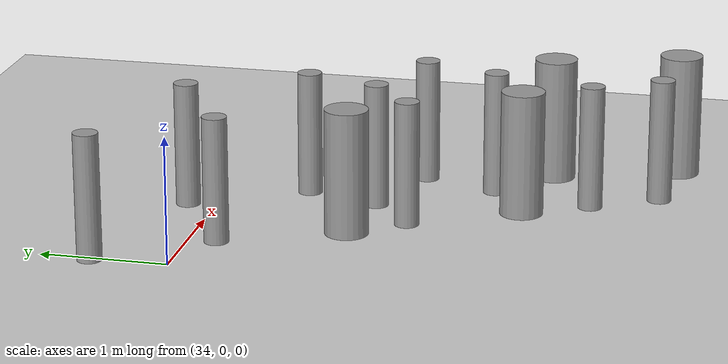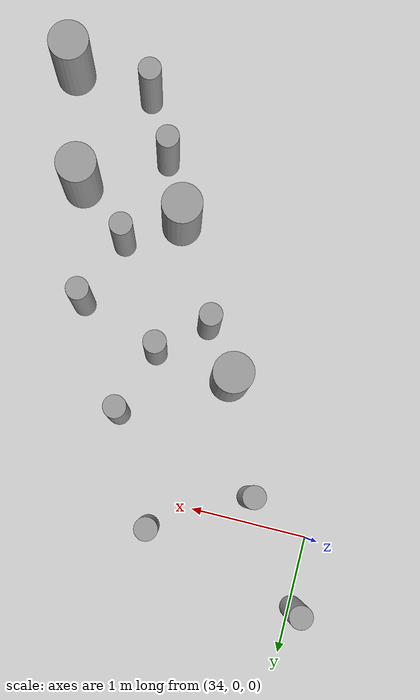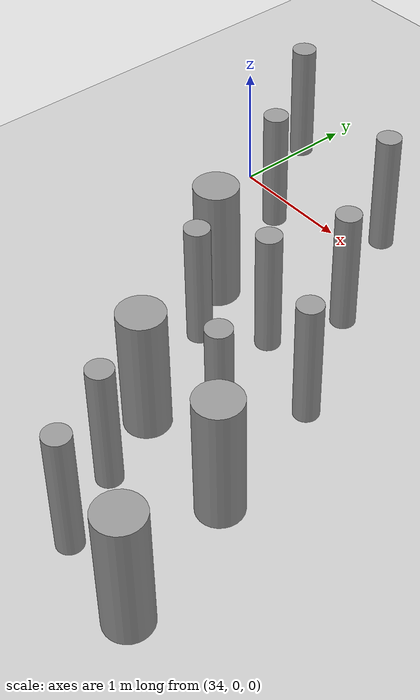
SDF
<sdf version="1.6">
 <world name="default">
  <model name="ground_plane">
   <static>1</static>
   <link name="link">
    <collision name="collision">
     <geometry><plane><normal>0 0 1</normal><size>100 100</size></plane></geometry>
     <surface><friction><ode><mu>100</mu><mu2>50</mu2></ode></friction></surface>
    </collision>
    <visual name="visual">
     <cast_shadows>0</cast_shadows>
     <geometry><plane><normal>0 0 1</normal><size>100 100</size></plane></geometry>
     <material>
      <script><uri>file://media/materials/scripts/gazebo.material</uri><name>Gazebo/Grey</name></script>
     </material>
    </visual>
   </link>
  </model>
  <model name="cyl_wall_clone_clone_1_clone_1_clone_clone_1">
   <link name="link_0">
    <pose>-2.73893 -0.366465 0 0 -0 0</pose>
    <inertial>
     <mass>0.0374993</mass>
     <inertia>
      <ixx>0.00321281</ixx>
      <ixy>0</ixy>
      <ixz>0</ixz>
      <iyy>0.00321281</iyy>
      <iyz>0</iyz>
      <izz>0.000175774</izz>
     </inertia>
    </inertial>
    <visual name="visual">
     <geometry><cylinder><radius>0.0968661</radius><length>1</length></cylinder></geometry>
     <material>
      <lighting>1</lighting>
      <script><uri>file://media/materials/scripts/gazebo.material</uri><name>Gazebo/Grey</name></script>
      <ambient>0.3 0.3 0.3 1</ambient>
      <diffuse>0.7 0.7 0.7 1</diffuse>
      <specular>0.01 0.01 0.01 1</specular>
      <emissive>0 0 0 1</emissive>
     </material>
    </visual>
    <collision name="collision">
     <geometry><cylinder><radius>0.096866</radius><length>1</length></cylinder></geometry>
     <surface>
      <friction>
       <ode><mu>1</mu><mu2>1</mu2><fdir1>0 0 0</fdir1><slip1>0</slip1><slip2>0</slip2></ode>
       <torsional>
        <coefficient>1</coefficient>
        <patch_radius>0</patch_radius>
        <surface_radius>0</surface_radius>
        <use_patch_radius>1</use_patch_radius>
        <ode><slip>0</slip></ode>
       </torsional>
      </friction>
      <bounce><restitution_coefficient>0</restitution_coefficient><threshold>1e+06</threshold></bounce>
      <contact>
       <collide_without_contact>0</collide_without_contact>
       <collide_without_contact_bitmask>1</collide_without_contact_bitmask>
       <collide_bitmask>1</collide_bitmask>
       <ode>
        <soft_cfm>0</soft_cfm>
        <soft_erp>0.2</soft_erp>
        <kp>1e+13</kp>
        <kd>1</kd>
        <max_vel>0.01</max_vel>
        <min_depth>0</min_depth>
       </ode>
       <bullet>
        <split_impulse>1</split_impulse>
        <split_impulse_penetration_threshold>-0.01</split_impulse_penetration_threshold>
        <soft_cfm>0</soft_cfm>
        <soft_erp>0.2</soft_erp>
        <kp>1e+13</kp>
        <kd>1</kd>
       </bullet>
      </contact>
     </surface>
    </collision>
   </link>
   <link name="link_0_clone">
    <pose>-1.73893 0.61877 0 0 -0 0</pose>
    <inertial>
     <mass>0.0374993</mass>
     <inertia>
      <ixx>0.00321281</ixx>
      <ixy>0</ixy>
      <ixz>0</ixz>
      <iyy>0.00321281</iyy>
      <iyz>0</iyz>
      <izz>0.000175774</izz>
     </inertia>
    </inertial>
    <visual name="visual">
     <geometry><cylinder><radius>0.0968661</radius><length>1</length></cylinder></geometry>
     <material>
      <lighting>1</lighting>
      <script><uri>file://media/materials/scripts/gazebo.material</uri><name>Gazebo/Grey</name></script>
      <ambient>0.3 0.3 0.3 1</ambient>
      <diffuse>0.7 0.7 0.7 1</diffuse>
      <specular>0.01 0.01 0.01 1</specular>
      <emissive>0 0 0 1</emissive>
      <shader type="pixel"/>
     </material>
    </visual>
    <collision name="collision">
     <geometry><cylinder><radius>0.096866</radius><length>1</length></cylinder></geometry>
     <surface>
      <friction>
       <ode><mu>1</mu><mu2>1</mu2><fdir1>0 0 0</fdir1><slip1>0</slip1><slip2>0</slip2></ode>
       <torsional>
        <coefficient>1</coefficient>
        <patch_radius>0</patch_radius>
        <surface_radius>0</surface_radius>
        <use_patch_radius>1</use_patch_radius>
        <ode><slip>0</slip></ode>
       </torsional>
      </friction>
      <bounce><restitution_coefficient>0</restitution_coefficient><threshold>1e+06</threshold></bounce>
      <contact>
       <collide_without_contact>0</collide_without_contact>
       <collide_without_contact_bitmask>1</collide_without_contact_bitmask>
       <collide_bitmask>1</collide_bitmask>
       <ode>
        <soft_cfm>0</soft_cfm>
        <soft_erp>0.2</soft_erp>
        <kp>1e+13</kp>
        <kd>1</kd>
        <max_vel>0.01</max_vel>
        <min_depth>0</min_depth>
       </ode>
       <bullet>
        <split_impulse>1</split_impulse>
        <split_impulse_penetration_threshold>-0.01</split_impulse_penetration_threshold>
        <soft_cfm>0</soft_cfm>
        <soft_erp>0.2</soft_erp>
        <kp>1e+13</kp>
        <kd>1</kd>
       </bullet>
      </contact>
     </surface>
    </collision>
   </link>
   <link name="link_0_clone_clone">
    <pose>-0.327073 0.143919 0 0 -0 0</pose>
    <inertial>
     <mass>0.0374993</mass>
     <inertia>
      <ixx>0.00321281</ixx>
      <ixy>0</ixy>
      <ixz>0</ixz>
      <iyy>0.00321281</iyy>
      <iyz>0</iyz>
      <izz>0.000175774</izz>
     </inertia>
    </inertial>
    <visual name="visual">
     <geometry><cylinder><radius>0.0968661</radius><length>1</length></cylinder></geometry>
     <material>
      <lighting>1</lighting>
      <script><uri>file://media/materials/scripts/gazebo.material</uri><name>Gazebo/Grey</name></script>
      <ambient>0.3 0.3 0.3 1</ambient>
      <diffuse>0.7 0.7 0.7 1</diffuse>
      <specular>0.01 0.01 0.01 1</specular>
      <emissive>0 0 0 1</emissive>
      <shader type="pixel"/>
     </material>
    </visual>
    <collision name="collision">
     <geometry><cylinder><radius>0.096866</radius><length>1</length></cylinder></geometry>
     <surface>
      <friction>
       <ode><mu>1</mu><mu2>1</mu2><fdir1>0 0 0</fdir1><slip1>0</slip1><slip2>0</slip2></ode>
       <torsional>
        <coefficient>1</coefficient>
        <patch_radius>0</patch_radius>
        <surface_radius>0</surface_radius>
        <use_patch_radius>1</use_patch_radius>
        <ode><slip>0</slip></ode>
       </torsional>
      </friction>
      <bounce><restitution_coefficient>0</restitution_coefficient><threshold>1e+06</threshold></bounce>
      <contact>
       <collide_without_contact>0</collide_without_contact>
       <collide_without_contact_bitmask>1</collide_without_contact_bitmask>
       <collide_bitmask>1</collide_bitmask>
       <ode>
        <soft_cfm>0</soft_cfm>
        <soft_erp>0.2</soft_erp>
        <kp>1e+13</kp>
        <kd>1</kd>
        <max_vel>0.01</max_vel>
        <min_depth>0</min_depth>
       </ode>
       <bullet>
        <split_impulse>1</split_impulse>
        <split_impulse_penetration_threshold>-0.01</split_impulse_penetration_threshold>
        <soft_cfm>0</soft_cfm>
        <soft_erp>0.2</soft_erp>
        <kp>1e+13</kp>
        <kd>1</kd>
       </bullet>
      </contact>
     </surface>
    </collision>
   </link>
   <link name="link_0_clone_clone_0">
    <pose>1.26107 -0.419359 0 0 -0 0</pose>
    <inertial>
     <mass>0.0374993</mass>
     <inertia>
      <ixx>0.00321281</ixx>
      <ixy>0</ixy>
      <ixz>0</ixz>
      <iyy>0.00321281</iyy>
      <iyz>0</iyz>
      <izz>0.000175774</izz>
     </inertia>
    </inertial>
    <visual name="visual">
     <geometry><cylinder><radius>0.0968661</radius><length>1</length></cylinder></geometry>
     <material>
      <lighting>1</lighting>
      <script><uri>file://media/materials/scripts/gazebo.material</uri><name>Gazebo/Grey</name></script>
      <ambient>0.3 0.3 0.3 1</ambient>
      <diffuse>0.7 0.7 0.7 1</diffuse>
      <specular>0.01 0.01 0.01 1</specular>
      <emissive>0 0 0 1</emissive>
      <shader type="pixel"/>
     </material>
    </visual>
    <collision name="collision">
     <geometry><cylinder><radius>0.096866</radius><length>1</length></cylinder></geometry>
     <surface>
      <friction>
       <ode><mu>1</mu><mu2>1</mu2><fdir1>0 0 0</fdir1><slip1>0</slip1><slip2>0</slip2></ode>
       <torsional>
        <coefficient>1</coefficient>
        <patch_radius>0</patch_radius>
        <surface_radius>0</surface_radius>
        <use_patch_radius>1</use_patch_radius>
        <ode><slip>0</slip></ode>
       </torsional>
      </friction>
      <bounce><restitution_coefficient>0</restitution_coefficient><threshold>1e+06</threshold></bounce>
      <contact>
       <collide_without_contact>0</collide_without_contact>
       <collide_without_contact_bitmask>1</collide_without_contact_bitmask>
       <collide_bitmask>1</collide_bitmask>
       <ode>
        <soft_cfm>0</soft_cfm>
        <soft_erp>0.2</soft_erp>
        <kp>1e+13</kp>
        <kd>1</kd>
        <max_vel>0.01</max_vel>
        <min_depth>0</min_depth>
       </ode>
       <bullet>
        <split_impulse>1</split_impulse>
        <split_impulse_penetration_threshold>-0.01</split_impulse_penetration_threshold>
        <soft_cfm>0</soft_cfm>
        <soft_erp>0.2</soft_erp>
        <kp>1e+13</kp>
        <kd>1</kd>
       </bullet>
      </contact>
     </surface>
    </collision>
   </link>
   <link name="link_0_clone_clone_1">
    <pose>-1.73893 -0.277168 0 0 -0 0</pose>
    <inertial>
     <mass>0.0374993</mass>
     <inertia>
      <ixx>0.00321281</ixx>
      <ixy>0</ixy>
      <ixz>0</ixz>
      <iyy>0.00321281</iyy>
      <iyz>0</iyz>
      <izz>0.000175774</izz>
     </inertia>
    </inertial>
    <visual name="visual">
     <geometry><cylinder><radius>0.0968661</radius><length>1</length></cylinder></geometry>
     <material>
      <lighting>1</lighting>
      <script><uri>file://media/materials/scripts/gazebo.material</uri><name>Gazebo/Grey</name></script>
      <ambient>0.3 0.3 0.3 1</ambient>
      <diffuse>0.7 0.7 0.7 1</diffuse>
      <specular>0.01 0.01 0.01 1</specular>
      <emissive>0 0 0 1</emissive>
      <shader type="pixel"/>
     </material>
    </visual>
    <collision name="collision">
     <geometry><cylinder><radius>0.096866</radius><length>1</length></cylinder></geometry>
     <surface>
      <friction>
       <ode><mu>1</mu><mu2>1</mu2><fdir1>0 0 0</fdir1><slip1>0</slip1><slip2>0</slip2></ode>
       <torsional>
        <coefficient>1</coefficient>
        <patch_radius>0</patch_radius>
        <surface_radius>0</surface_radius>
        <use_patch_radius>1</use_patch_radius>
        <ode><slip>0</slip></ode>
       </torsional>
      </friction>
      <bounce><restitution_coefficient>0</restitution_coefficient><threshold>1e+06</threshold></bounce>
      <contact>
       <collide_without_contact>0</collide_without_contact>
       <collide_without_contact_bitmask>1</collide_without_contact_bitmask>
       <collide_bitmask>1</collide_bitmask>
       <ode>
        <soft_cfm>0</soft_cfm>
        <soft_erp>0.2</soft_erp>
        <kp>1e+13</kp>
        <kd>1</kd>
        <max_vel>0.01</max_vel>
        <min_depth>0</min_depth>
       </ode>
       <bullet>
        <split_impulse>1</split_impulse>
        <split_impulse_penetration_threshold>-0.01</split_impulse_penetration_threshold>
        <soft_cfm>0</soft_cfm>
        <soft_erp>0.2</soft_erp>
        <kp>1e+13</kp>
        <kd>1</kd>
       </bullet>
      </contact>
     </surface>
    </collision>
   </link>
   <link name="link_0_clone_clone_2">
    <pose>-0.738934 0.593961 0 0 -0 0</pose>
    <inertial>
     <mass>0.0374993</mass>
     <inertia>
      <ixx>0.00321281</ixx>
      <ixy>0</ixy>
      <ixz>0</ixz>
      <iyy>0.00321281</iyy>
      <iyz>0</iyz>
      <izz>0.000175774</izz>
     </inertia>
    </inertial>
    <visual name="visual">
     <geometry><cylinder><radius>0.0968661</radius><length>1</length></cylinder></geometry>
     <material>
      <lighting>1</lighting>
      <script><uri>file://media/materials/scripts/gazebo.material</uri><name>Gazebo/Grey</name></script>
      <ambient>0.3 0.3 0.3 1</ambient>
      <diffuse>0.7 0.7 0.7 1</diffuse>
      <specular>0.01 0.01 0.01 1</specular>
      <emissive>0 0 0 1</emissive>
      <shader type="pixel"/>
     </material>
    </visual>
    <collision name="collision">
     <geometry><cylinder><radius>0.096866</radius><length>1</length></cylinder></geometry>
     <surface>
      <friction>
       <ode><mu>1</mu><mu2>1</mu2><fdir1>0 0 0</fdir1><slip1>0</slip1><slip2>0</slip2></ode>
       <torsional>
        <coefficient>1</coefficient>
        <patch_radius>0</patch_radius>
        <surface_radius>0</surface_radius>
        <use_patch_radius>1</use_patch_radius>
        <ode><slip>0</slip></ode>
       </torsional>
      </friction>
      <bounce><restitution_coefficient>0</restitution_coefficient><threshold>1e+06</threshold></bounce>
      <contact>
       <collide_without_contact>0</collide_without_contact>
       <collide_without_contact_bitmask>1</collide_without_contact_bitmask>
       <collide_bitmask>1</collide_bitmask>
       <ode>
        <soft_cfm>0</soft_cfm>
        <soft_erp>0.2</soft_erp>
        <kp>1e+13</kp>
        <kd>1</kd>
        <max_vel>0.01</max_vel>
        <min_depth>0</min_depth>
       </ode>
       <bullet>
        <split_impulse>1</split_impulse>
        <split_impulse_penetration_threshold>-0.01</split_impulse_penetration_threshold>
        <soft_cfm>0</soft_cfm>
        <soft_erp>0.2</soft_erp>
        <kp>1e+13</kp>
        <kd>1</kd>
       </bullet>
      </contact>
     </surface>
    </collision>
   </link>
   <link name="link_0_clone_clone_3">
    <pose>0.261066 0.624849 0 0 -0 0</pose>
    <inertial>
     <mass>0.0374993</mass>
     <inertia>
      <ixx>0.00321281</ixx>
      <ixy>0</ixy>
      <ixz>0</ixz>
      <iyy>0.00321281</iyy>
      <iyz>0</iyz>
      <izz>0.000175774</izz>
     </inertia>
    </inertial>
    <visual name="visual">
     <geometry><cylinder><radius>0.0968661</radius><length>1</length></cylinder></geometry>
     <material>
      <lighting>1</lighting>
      <script><uri>file://media/materials/scripts/gazebo.material</uri><name>Gazebo/Grey</name></script>
      <ambient>0.3 0.3 0.3 1</ambient>
      <diffuse>0.7 0.7 0.7 1</diffuse>
      <specular>0.01 0.01 0.01 1</specular>
      <emissive>0 0 0 1</emissive>
      <shader type="pixel"/>
     </material>
    </visual>
    <collision name="collision">
     <geometry><cylinder><radius>0.096866</radius><length>1</length></cylinder></geometry>
     <surface>
      <friction>
       <ode><mu>1</mu><mu2>1</mu2><fdir1>0 0 0</fdir1><slip1>0</slip1><slip2>0</slip2></ode>
       <torsional>
        <coefficient>1</coefficient>
        <patch_radius>0</patch_radius>
        <surface_radius>0</surface_radius>
        <use_patch_radius>1</use_patch_radius>
        <ode><slip>0</slip></ode>
       </torsional>
      </friction>
      <bounce><restitution_coefficient>0</restitution_coefficient><threshold>1e+06</threshold></bounce>
      <contact>
       <collide_without_contact>0</collide_without_contact>
       <collide_without_contact_bitmask>1</collide_without_contact_bitmask>
       <collide_bitmask>1</collide_bitmask>
       <ode>
        <soft_cfm>0</soft_cfm>
        <soft_erp>0.2</soft_erp>
        <kp>1e+13</kp>
        <kd>1</kd>
        <max_vel>0.01</max_vel>
        <min_depth>0</min_depth>
       </ode>
       <bullet>
        <split_impulse>1</split_impulse>
        <split_impulse_penetration_threshold>-0.01</split_impulse_penetration_threshold>
        <soft_cfm>0</soft_cfm>
        <soft_erp>0.2</soft_erp>
        <kp>1e+13</kp>
        <kd>1</kd>
       </bullet>
      </contact>
     </surface>
    </collision>
   </link>
   <link name="link_0_clone_clone_4">
    <pose>-0.239049 -0.353105 0 0 -0 0</pose>
    <inertial>
     <mass>0.0374993</mass>
     <inertia>
      <ixx>0.00321281</ixx>
      <ixy>0</ixy>
      <ixz>0</ixz>
      <iyy>0.00321281</iyy>
      <iyz>0</iyz>
      <izz>0.000175774</izz>
     </inertia>
    </inertial>
    <visual name="visual">
     <geometry><cylinder><radius>0.0968661</radius><length>1</length></cylinder></geometry>
     <material>
      <lighting>1</lighting>
      <script><uri>file://media/materials/scripts/gazebo.material</uri><name>Gazebo/Grey</name></script>
      <ambient>0.3 0.3 0.3 1</ambient>
      <diffuse>0.7 0.7 0.7 1</diffuse>
      <specular>0.01 0.01 0.01 1</specular>
      <emissive>0 0 0 1</emissive>
      <shader type="pixel"/>
     </material>
    </visual>
    <collision name="collision">
     <geometry><cylinder><radius>0.096866</radius><length>1</length></cylinder></geometry>
     <surface>
      <friction>
       <ode><mu>1</mu><mu2>1</mu2><fdir1>0 0 0</fdir1><slip1>0</slip1><slip2>0</slip2></ode>
       <torsional>
        <coefficient>1</coefficient>
        <patch_radius>0</patch_radius>
        <surface_radius>0</surface_radius>
        <use_patch_radius>1</use_patch_radius>
        <ode><slip>0</slip></ode>
       </torsional>
      </friction>
      <bounce><restitution_coefficient>0</restitution_coefficient><threshold>1e+06</threshold></bounce>
      <contact>
       <collide_without_contact>0</collide_without_contact>
       <collide_without_contact_bitmask>1</collide_without_contact_bitmask>
       <collide_bitmask>1</collide_bitmask>
       <ode>
        <soft_cfm>0</soft_cfm>
        <soft_erp>0.2</soft_erp>
        <kp>1e+13</kp>
        <kd>1</kd>
        <max_vel>0.01</max_vel>
        <min_depth>0</min_depth>
       </ode>
       <bullet>
        <split_impulse>1</split_impulse>
        <split_impulse_penetration_threshold>-0.01</split_impulse_penetration_threshold>
        <soft_cfm>0</soft_cfm>
        <soft_erp>0.2</soft_erp>
        <kp>1e+13</kp>
        <kd>1</kd>
       </bullet>
      </contact>
     </surface>
    </collision>
   </link>
   <link name="link_0_clone_clone_5">
    <pose>0.672792 0.143919 0 0 -0 0</pose>
    <inertial>
     <mass>0.0374993</mass>
     <inertia>
      <ixx>0.00321281</ixx>
      <ixy>0</ixy>
      <ixz>0</ixz>
      <iyy>0.00321281</iyy>
      <iyz>0</iyz>
      <izz>0.000175774</izz>
     </inertia>
    </inertial>
    <visual name="visual">
     <geometry><cylinder><radius>0.0968661</radius><length>1</length></cylinder></geometry>
     <material>
      <lighting>1</lighting>
      <script><uri>file://media/materials/scripts/gazebo.material</uri><name>Gazebo/Grey</name></script>
      <ambient>0.3 0.3 0.3 1</ambient>
      <diffuse>0.7 0.7 0.7 1</diffuse>
      <specular>0.01 0.01 0.01 1</specular>
      <emissive>0 0 0 1</emissive>
      <shader type="pixel"/>
     </material>
    </visual>
    <collision name="collision">
     <geometry><cylinder><radius>0.096866</radius><length>1</length></cylinder></geometry>
     <surface>
      <friction>
       <ode><mu>1</mu><mu2>1</mu2><fdir1>0 0 0</fdir1><slip1>0</slip1><slip2>0</slip2></ode>
       <torsional>
        <coefficient>1</coefficient>
        <patch_radius>0</patch_radius>
        <surface_radius>0</surface_radius>
        <use_patch_radius>1</use_patch_radius>
        <ode><slip>0</slip></ode>
       </torsional>
      </friction>
      <bounce><restitution_coefficient>0</restitution_coefficient><threshold>1e+06</threshold></bounce>
      <contact>
       <collide_without_contact>0</collide_without_contact>
       <collide_without_contact_bitmask>1</collide_without_contact_bitmask>
       <collide_bitmask>1</collide_bitmask>
       <ode>
        <soft_cfm>0</soft_cfm>
        <soft_erp>0.2</soft_erp>
        <kp>1e+13</kp>
        <kd>1</kd>
        <max_vel>0.01</max_vel>
        <min_depth>0</min_depth>
       </ode>
       <bullet>
        <split_impulse>1</split_impulse>
        <split_impulse_penetration_threshold>-0.01</split_impulse_penetration_threshold>
        <soft_cfm>0</soft_cfm>
        <soft_erp>0.2</soft_erp>
        <kp>1e+13</kp>
        <kd>1</kd>
       </bullet>
      </contact>
     </surface>
    </collision>
   </link>
   <link name="link_0_clone_clone_6">
    <pose>1.84596 -0.433423 0 0 -0 0</pose>
    <inertial>
     <mass>0.0374993</mass>
     <inertia>
      <ixx>0.00321281</ixx>
      <ixy>0</ixy>
      <ixz>0</ixz>
      <iyy>0.00321281</iyy>
      <iyz>0</iyz>
      <izz>0.000175774</izz>
     </inertia>
    </inertial>
    <visual name="visual">
     <geometry><cylinder><radius>0.0968661</radius><length>1</length></cylinder></geometry>
     <material>
      <lighting>1</lighting>
      <script><uri>file://media/materials/scripts/gazebo.material</uri><name>Gazebo/Grey</name></script>
      <ambient>0.3 0.3 0.3 1</ambient>
      <diffuse>0.7 0.7 0.7 1</diffuse>
      <specular>0.01 0.01 0.01 1</specular>
      <emissive>0 0 0 1</emissive>
      <shader type="pixel"/>
     </material>
    </visual>
    <collision name="collision">
     <geometry><cylinder><radius>0.096866</radius><length>1</length></cylinder></geometry>
     <surface>
      <friction>
       <ode><mu>1</mu><mu2>1</mu2><fdir1>0 0 0</fdir1><slip1>0</slip1><slip2>0</slip2></ode>
       <torsional>
        <coefficient>1</coefficient>
        <patch_radius>0</patch_radius>
        <surface_radius>0</surface_radius>
        <use_patch_radius>1</use_patch_radius>
        <ode><slip>0</slip></ode>
       </torsional>
      </friction>
      <bounce><restitution_coefficient>0</restitution_coefficient><threshold>1e+06</threshold></bounce>
      <contact>
       <collide_without_contact>0</collide_without_contact>
       <collide_without_contact_bitmask>1</collide_without_contact_bitmask>
       <collide_bitmask>1</collide_bitmask>
       <ode>
        <soft_cfm>0</soft_cfm>
        <soft_erp>0.2</soft_erp>
        <kp>1e+13</kp>
        <kd>1</kd>
        <max_vel>0.01</max_vel>
        <min_depth>0</min_depth>
       </ode>
       <bullet>
        <split_impulse>1</split_impulse>
        <split_impulse_penetration_threshold>-0.01</split_impulse_penetration_threshold>
        <soft_cfm>0</soft_cfm>
        <soft_erp>0.2</soft_erp>
        <kp>1e+13</kp>
        <kd>1</kd>
       </bullet>
      </contact>
     </surface>
    </collision>
   </link>
   <link name="link_1">
    <pose>-0.738934 -0.397931 0 0 -0 0</pose>
    <inertial>
     <mass>0.117398</mass>
     <inertia>
      <ixx>0.0106445</ixx>
      <ixy>0</ixy>
      <ixz>0</ixz>
      <iyy>0.0106445</iyy>
      <iyz>0</iyz>
      <izz>0.00172278</izz>
     </inertia>
    </inertial>
    <visual name="visual">
     <geometry><cylinder><radius>0.171317</radius><length>1</length></cylinder></geometry>
     <material>
      <lighting>1</lighting>
      <script><uri>file://media/materials/scripts/gazebo.material</uri><name>Gazebo/Grey</name></script>
      <ambient>0.3 0.3 0.3 1</ambient>
      <diffuse>0.7 0.7 0.7 1</diffuse>
      <specular>0.01 0.01 0.01 1</specular>
      <emissive>0 0 0 1</emissive>
     </material>
    </visual>
    <collision name="collision">
     <geometry><cylinder><radius>0.171317</radius><length>1</length></cylinder></geometry>
     <surface>
      <friction>
       <ode><mu>1</mu><mu2>1</mu2><fdir1>0 0 0</fdir1><slip1>0</slip1><slip2>0</slip2></ode>
       <torsional>
        <coefficient>1</coefficient>
        <patch_radius>0</patch_radius>
        <surface_radius>0</surface_radius>
        <use_patch_radius>1</use_patch_radius>
        <ode><slip>0</slip></ode>
       </torsional>
      </friction>
      <bounce><restitution_coefficient>0</restitution_coefficient><threshold>1e+06</threshold></bounce>
      <contact>
       <collide_without_contact>0</collide_without_contact>
       <collide_without_contact_bitmask>1</collide_without_contact_bitmask>
       <collide_bitmask>1</collide_bitmask>
       <ode>
        <soft_cfm>0</soft_cfm>
        <soft_erp>0.2</soft_erp>
        <kp>1e+13</kp>
        <kd>1</kd>
        <max_vel>0.01</max_vel>
        <min_depth>0</min_depth>
       </ode>
       <bullet>
        <split_impulse>1</split_impulse>
        <split_impulse_penetration_threshold>-0.01</split_impulse_penetration_threshold>
        <soft_cfm>0</soft_cfm>
        <soft_erp>0.2</soft_erp>
        <kp>1e+13</kp>
        <kd>1</kd>
       </bullet>
      </contact>
     </surface>
    </collision>
   </link>
   <link name="link_1_clone">
    <pose>0.697784 -0.380861 0 0 -0 0</pose>
    <inertial>
     <mass>0.117398</mass>
     <inertia>
      <ixx>0.0106445</ixx>
      <ixy>0</ixy>
      <ixz>0</ixz>
      <iyy>0.0106445</iyy>
      <iyz>0</iyz>
      <izz>0.00172278</izz>
     </inertia>
    </inertial>
    <visual name="visual">
     <geometry><cylinder><radius>0.171317</radius><length>1</length></cylinder></geometry>
     <material>
      <lighting>1</lighting>
      <script><uri>file://media/materials/scripts/gazebo.material</uri><name>Gazebo/Grey</name></script>
      <ambient>0.3 0.3 0.3 1</ambient>
      <diffuse>0.7 0.7 0.7 1</diffuse>
      <specular>0.01 0.01 0.01 1</specular>
      <emissive>0 0 0 1</emissive>
      <shader type="pixel"/>
     </material>
    </visual>
    <collision name="collision">
     <geometry><cylinder><radius>0.171317</radius><length>1</length></cylinder></geometry>
     <surface>
      <friction>
       <ode><mu>1</mu><mu2>1</mu2><fdir1>0 0 0</fdir1><slip1>0</slip1><slip2>0</slip2></ode>
       <torsional>
        <coefficient>1</coefficient>
        <patch_radius>0</patch_radius>
        <surface_radius>0</surface_radius>
        <use_patch_radius>1</use_patch_radius>
        <ode><slip>0</slip></ode>
       </torsional>
      </friction>
      <bounce><restitution_coefficient>0</restitution_coefficient><threshold>1e+06</threshold></bounce>
      <contact>
       <collide_without_contact>0</collide_without_contact>
       <collide_without_contact_bitmask>1</collide_without_contact_bitmask>
       <collide_bitmask>1</collide_bitmask>
       <ode>
        <soft_cfm>0</soft_cfm>
        <soft_erp>0.2</soft_erp>
        <kp>1e+13</kp>
        <kd>1</kd>
        <max_vel>0.01</max_vel>
        <min_depth>0</min_depth>
       </ode>
       <bullet>
        <split_impulse>1</split_impulse>
        <split_impulse_penetration_threshold>-0.01</split_impulse_penetration_threshold>
        <soft_cfm>0</soft_cfm>
        <soft_erp>0.2</soft_erp>
        <kp>1e+13</kp>
        <kd>1</kd>
       </bullet>
      </contact>
     </surface>
    </collision>
   </link>
   <link name="link_1_clone_0">
    <pose>1.26107 0.358974 0 0 -0 0</pose>
    <inertial>
     <mass>0.117398</mass>
     <inertia>
      <ixx>0.0106445</ixx>
      <ixy>0</ixy>
      <ixz>0</ixz>
      <iyy>0.0106445</iyy>
      <iyz>0</iyz>
      <izz>0.00172278</izz>
     </inertia>
    </inertial>
    <visual name="visual">
     <geometry><cylinder><radius>0.171317</radius><length>1</length></cylinder></geometry>
     <material>
      <lighting>1</lighting>
      <script><uri>file://media/materials/scripts/gazebo.material</uri><name>Gazebo/Grey</name></script>
      <ambient>0.3 0.3 0.3 1</ambient>
      <diffuse>0.7 0.7 0.7 1</diffuse>
      <specular>0.01 0.01 0.01 1</specular>
      <emissive>0 0 0 1</emissive>
      <shader type="pixel"/>
     </material>
    </visual>
    <collision name="collision">
     <geometry><cylinder><radius>0.171317</radius><length>1</length></cylinder></geometry>
     <surface>
      <friction>
       <ode><mu>1</mu><mu2>1</mu2><fdir1>0 0 0</fdir1><slip1>0</slip1><slip2>0</slip2></ode>
       <torsional>
        <coefficient>1</coefficient>
        <patch_radius>0</patch_radius>
        <surface_radius>0</surface_radius>
        <use_patch_radius>1</use_patch_radius>
        <ode><slip>0</slip></ode>
       </torsional>
      </friction>
      <bounce><restitution_coefficient>0</restitution_coefficient><threshold>1e+06</threshold></bounce>
      <contact>
       <collide_without_contact>0</collide_without_contact>
       <collide_without_contact_bitmask>1</collide_without_contact_bitmask>
       <collide_bitmask>1</collide_bitmask>
       <ode>
        <soft_cfm>0</soft_cfm>
        <soft_erp>0.2</soft_erp>
        <kp>1e+13</kp>
        <kd>1</kd>
        <max_vel>0.01</max_vel>
        <min_depth>0</min_depth>
       </ode>
       <bullet>
        <split_impulse>1</split_impulse>
        <split_impulse_penetration_threshold>-0.01</split_impulse_penetration_threshold>
        <soft_cfm>0</soft_cfm>
        <soft_erp>0.2</soft_erp>
        <kp>1e+13</kp>
        <kd>1</kd>
       </bullet>
      </contact>
     </surface>
    </collision>
   </link>
   <link name="link_1_clone_1">
    <pose>2.26107 0.143919 0 0 -0 0</pose>
    <inertial>
     <mass>0.117398</mass>
     <inertia>
      <ixx>0.0106445</ixx>
      <ixy>0</ixy>
      <ixz>0</ixz>
      <iyy>0.0106445</iyy>
      <iyz>0</iyz>
      <izz>0.00172278</izz>
     </inertia>
    </inertial>
    <visual name="visual">
     <geometry><cylinder><radius>0.171317</radius><length>1</length></cylinder></geometry>
     <material>
      <lighting>1</lighting>
      <script><uri>file://media/materials/scripts/gazebo.material</uri><name>Gazebo/Grey</name></script>
      <ambient>0.3 0.3 0.3 1</ambient>
      <diffuse>0.7 0.7 0.7 1</diffuse>
      <specular>0.01 0.01 0.01 1</specular>
      <emissive>0 0 0 1</emissive>
      <shader type="pixel"/>
     </material>
    </visual>
    <collision name="collision">
     <geometry><cylinder><radius>0.171317</radius><length>1</length></cylinder></geometry>
     <surface>
      <friction>
       <ode><mu>1</mu><mu2>1</mu2><fdir1>0 0 0</fdir1><slip1>0</slip1><slip2>0</slip2></ode>
       <torsional>
        <coefficient>1</coefficient>
        <patch_radius>0</patch_radius>
        <surface_radius>0</surface_radius>
        <use_patch_radius>1</use_patch_radius>
        <ode><slip>0</slip></ode>
       </torsional>
      </friction>
      <bounce><restitution_coefficient>0</restitution_coefficient><threshold>1e+06</threshold></bounce>
      <contact>
       <collide_without_contact>0</collide_without_contact>
       <collide_without_contact_bitmask>1</collide_without_contact_bitmask>
       <collide_bitmask>1</collide_bitmask>
       <ode>
        <soft_cfm>0</soft_cfm>
        <soft_erp>0.2</soft_erp>
        <kp>1e+13</kp>
        <kd>1</kd>
        <max_vel>0.01</max_vel>
        <min_depth>0</min_depth>
       </ode>
       <bullet>
        <split_impulse>1</split_impulse>
        <split_impulse_penetration_threshold>-0.01</split_impulse_penetration_threshold>
        <soft_cfm>0</soft_cfm>
        <soft_erp>0.2</soft_erp>
        <kp>1e+13</kp>
        <kd>1</kd>
       </bullet>
      </contact>
     </surface>
    </collision>
   </link>
   <static>1</static>
   <pose>35.6655 -1.58615 0.5 0 0 -1.04703</pose>
  </model>
 </world>
</sdf>
